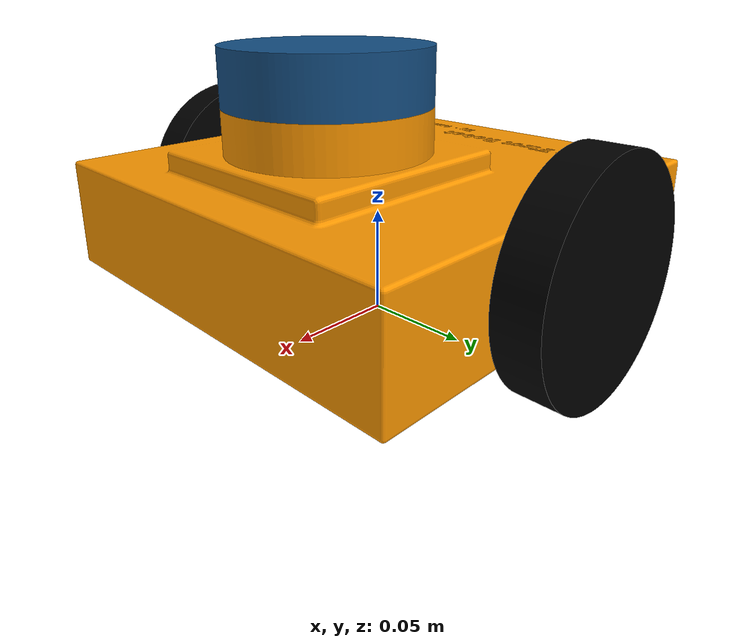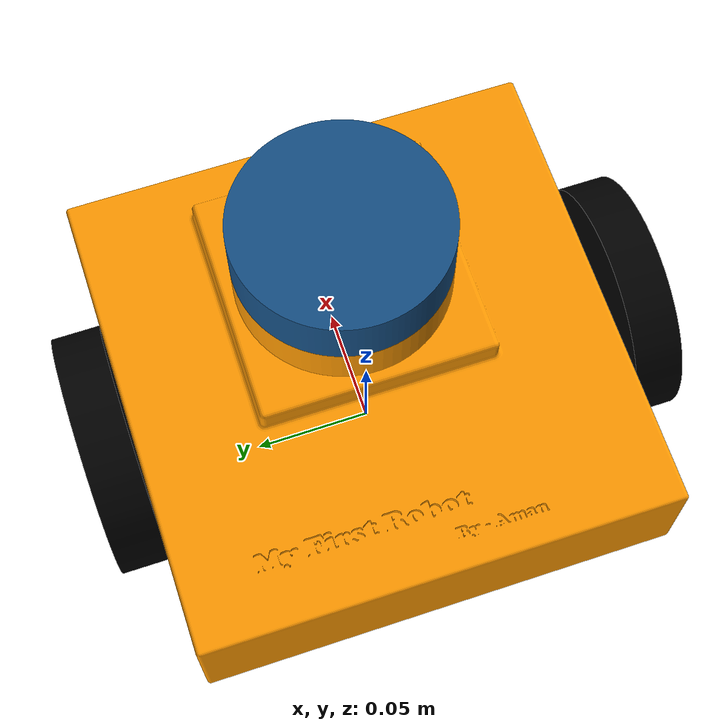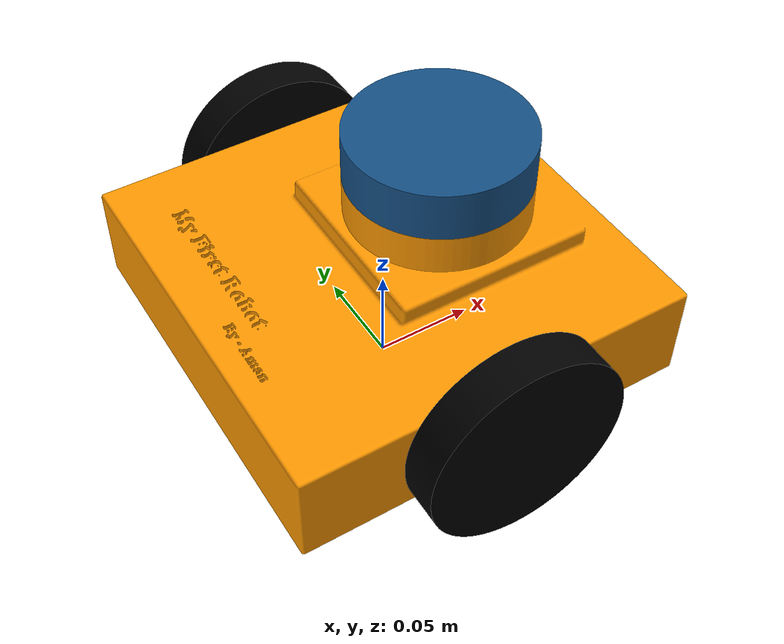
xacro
<?xml version="1.0" ?>
<robot name="my_autonomous_bot" xmlns:xacro="http://www.ros.org/wiki/xacro">

<xacro:include filename="$(find project_my_bot)/urdf/materials.xacro" />
<xacro:include filename="$(find project_my_bot)/urdf/transformations.trans" />
<xacro:include filename="$(find project_my_bot)/urdf/gazebo_properties.gazebo" />
<xacro:include filename="$(find project_my_bot)/urdf/robot_structure.xacro" />

</robot>

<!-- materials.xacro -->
<robot xmlns:xacro="http://www.ros.org/wiki/xacro" >

  <material name="black">
    <color rgba="0 0 0 1"/>
  </material>

  <material name="blue">
    <color rgba="0.08 0.31 0.52 1" />
  </material>

  <material name="orange">
    <color rgba="1 0.6 0 1" />
  </material>

</robot>

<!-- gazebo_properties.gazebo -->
<robot xmlns:xacro="http://www.ros.org/wiki/xacro" >

  <xacro:property name="orange" value="Gazebo/Orange" />
  <xacro:property name="black" value="Gazebo/Black" />
  <xacro:property name="blue" value="Gazebo/Blue" />

  <gazebo>
    <plugin name="control" filename="libgazebo_ros_control.so"/>
  </gazebo>
  <gazebo reference="base_link">
    <material>${orange}</material>
    <mu1>0.2</mu1>
    <mu2>0.2</mu2>
    <self_collide>true</self_collide>
    <gravity>true</gravity>
  </gazebo>

  <gazebo reference="right_wheel_link">
    <material>${black}</material>
    <mu1>0.2</mu1>
    <mu2>0.2</mu2>
    <self_collide>true</self_collide>
  </gazebo>

  <gazebo reference="left_wheel_link">
    <material>${black}</material>
    <mu1>0.2</mu1>
    <mu2>0.2</mu2>
    <self_collide>true</self_collide>
  </gazebo>

  <gazebo reference="lidar_link">
    <material>${blue}</material>
    <mu1>0.2</mu1>
    <mu2>0.2</mu2>
    <self_collide>true</self_collide>
  </gazebo>

</robot>

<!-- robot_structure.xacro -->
<robot xmlns:xacro="http://www.ros.org/wiki/xacro">

    <link name="base_footprint" />

    <link name="base_link">
        <inertial>
            <origin xyz="0.0030572583667421572 -6.550273688609154e-06 0.053416548785980185" rpy="0 0 0"/>
            <mass value="2.6773206552997073"/>
            <inertia ixx="0.009013" iyy="0.00931" izz="0.016474" ixy="-1e-06" iyz="0.0" ixz="-0.000285"/>
        </inertial>
        <visual>
            <origin xyz="0 0 0" rpy="0 0 0"/>
            <geometry>
            <mesh filename="file://$(find project_my_bot)/meshes/base_link.stl" scale="0.001 0.001 0.001"/>
            </geometry>
            <material name="orange"/>
        </visual>
        <collision>
            <origin xyz="0 0 0" rpy="0 0 0"/>
            <geometry>
            <mesh filename="file://$(find project_my_bot)/meshes/base_link.stl" scale="0.001 0.001 0.001"/>
            </geometry>
        </collision>
    </link>

    <link name="right_wheel_link">
        <inertial>
            <origin xyz="-7.450580374526844e-10 -0.010000000000000037 3.725290215195187e-10" rpy="0 0 0"/>
            <mass value="0.14608405839192537"/>
            <inertia ixx="9.6e-05" iyy="0.000183" izz="9.6e-05" ixy="-0.0" iyz="0.0" ixz="-0.0"/>
        </inertial>
        <visual>
            <origin xyz="0.0 0.1 -0.05" rpy="0 0 0"/>
            <geometry>
            <mesh filename="file://$(find project_my_bot)/meshes/right_wheel_link.stl" scale="0.001 0.001 0.001"/>
            </geometry>
            <material name="black"/>
        </visual>
        <collision>
            <origin xyz="0.0 0.1 -0.05" rpy="0 0 0"/>
            <geometry>
            <mesh filename="file://$(find project_my_bot)/meshes/right_wheel_link.stl" scale="0.001 0.001 0.001"/>
            </geometry>
        </collision>
    </link>

    <link name="left_wheel_link">
        <inertial>
            <origin xyz="-7.450580374526844e-10 0.010000000000000037 3.725290215195187e-10" rpy="0 0 0"/>
            <mass value="0.14608405839192537"/>
            <inertia ixx="9.6e-05" iyy="0.000183" izz="9.6e-05" ixy="0.0" iyz="0.0" ixz="-0.0"/>
        </inertial>
        <visual>
            <origin xyz="-0.0 -0.1 -0.05" rpy="0 0 0"/>
            <geometry>
            <mesh filename="file://$(find project_my_bot)/meshes/left_wheel_link.stl" scale="0.001 0.001 0.001"/>
            </geometry>
            <material name="black"/>
        </visual>
        <collision>
            <origin xyz="-0.0 -0.1 -0.05" rpy="0 0 0"/>
            <geometry>
            <mesh filename="file://$(find project_my_bot)/meshes/left_wheel_link.stl" scale="0.001 0.001 0.001"/>
            </geometry>
        </collision>
    </link>

    <link name="lidar_link">
        <inertial>
            <origin xyz="-1.3877787807814457e-17 4.288906000090392e-17 0.012499999999999997" rpy="0 0 0"/>
            <mass value="1.2484885554906686"/>
            <inertia ixx="0.000697" iyy="0.000697" izz="0.001264" ixy="0.0" iyz="-0.0" ixz="0.0"/>
        </inertial>
        <visual>
            <origin xyz="-0.03 -0.0 -0.105" rpy="0 0 0"/>
            <geometry>
            <mesh filename="file://$(find project_my_bot)/meshes/lidar_link.stl" scale="0.001 0.001 0.001"/>
            </geometry>
            <material name="blue"/>
        </visual>
        <collision>
            <origin xyz="-0.03 -0.0 -0.105" rpy="0 0 0"/>
            <geometry>
            <mesh filename="file://$(find project_my_bot)/meshes/lidar_link.stl" scale="0.001 0.001 0.001"/>
            </geometry>
        </collision>
    </link>

    <joint name="base_footprint" type="fixed">
        <parent link="base_footprint" />
        <child link="base_link" />
        <origin xyz="0 0 0" rpy="0 0 0" />
    </joint>

    <joint name="base_right_wheel_joint" type="continuous">
        <origin xyz="0.0 -0.1 0.05" rpy="0 0 0"/>
        <parent link="base_link"/>
        <child link="right_wheel_link"/>
        <axis xyz="0.0 -1.0 0.0"/>
    </joint>

    <joint name="base_left_wheel_joint" type="continuous">
        <origin xyz="0.0 0.1 0.05" rpy="0 0 0"/>
        <parent link="base_link"/>
        <child link="left_wheel_link"/>
        <axis xyz="0.0 1.0 0.0"/>
    </joint>

    <joint name="base_lidar_joint" type="fixed">
        <origin xyz="0.03 0.0 0.105" rpy="0 0 0"/>
        <parent link="base_link"/>
        <child link="lidar_link"/>
    </joint>

</robot>
